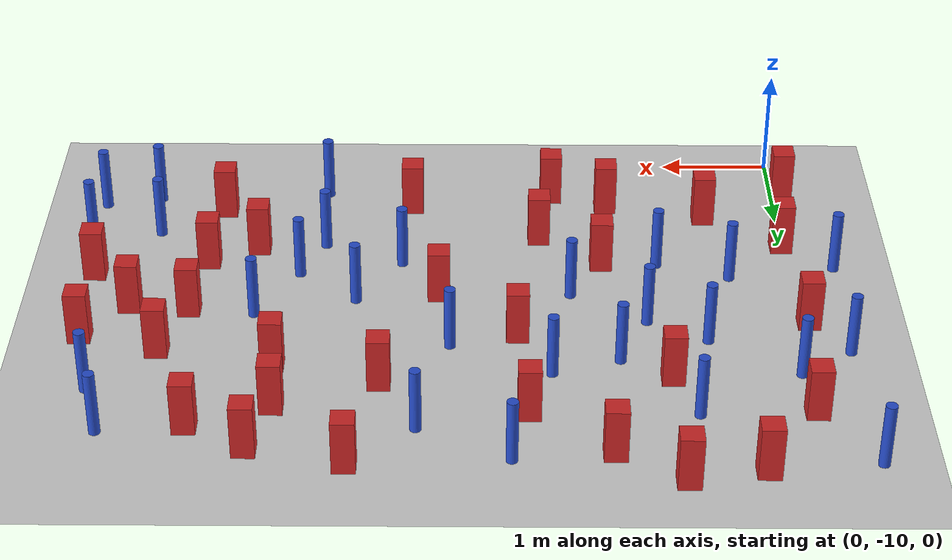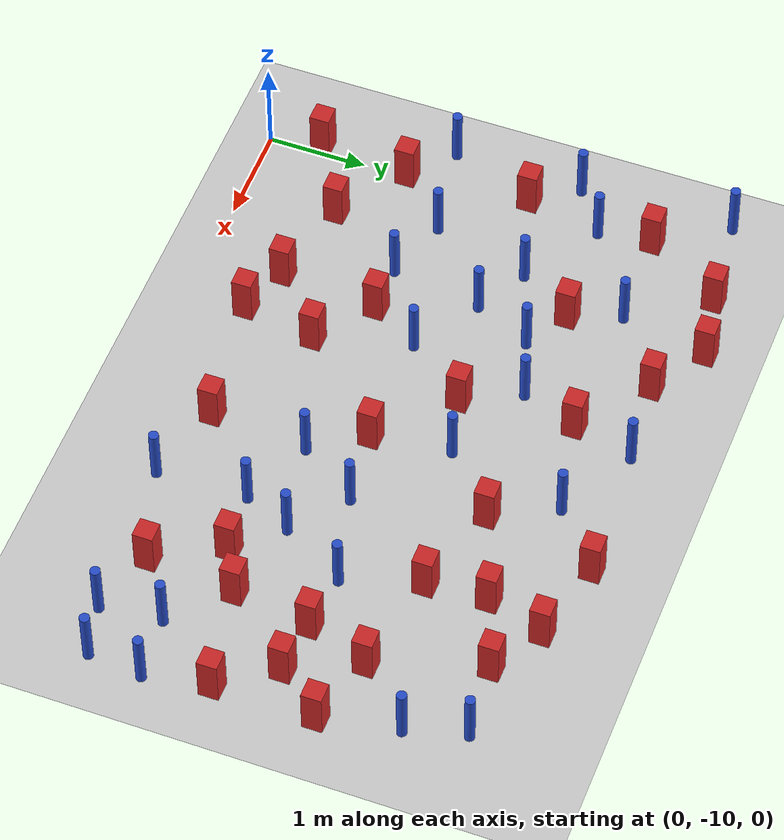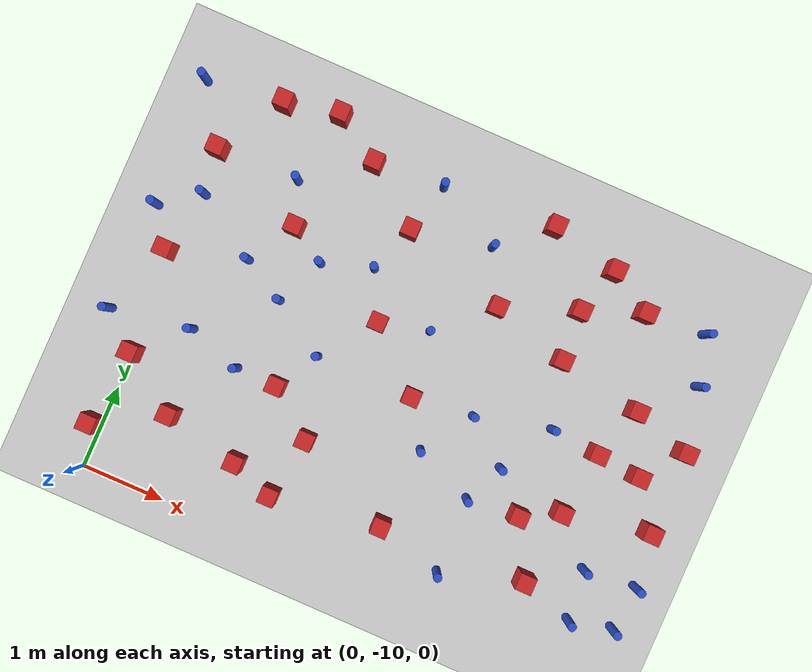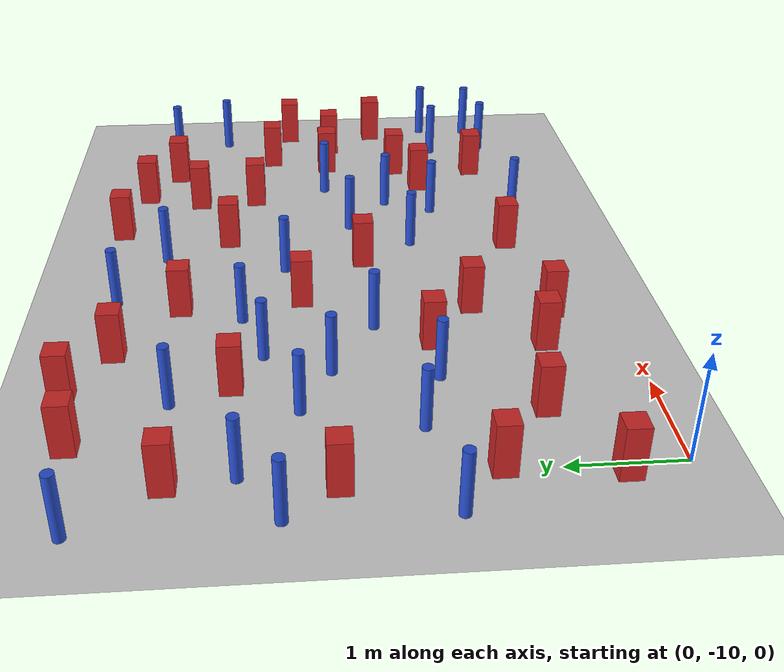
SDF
<sdf version="1.6">
 <world name="default">
  <model name="ground_plane">
   <static>1</static>
   <link name="link">
    <collision name="collision">
     <geometry><plane><normal>0 0 1</normal><size>100 100</size></plane></geometry>
     <surface><friction><ode><mu>100</mu><mu2>50</mu2></ode></friction></surface>
    </collision>
    <visual name="visual">
     <cast_shadows>0</cast_shadows>
     <geometry><plane><normal>0 0 1</normal><size>100 100</size></plane></geometry>
     <material>
      <ambient>1.0 1.0 1.0 1.0</ambient>
      <diffuse>0.8 0.8 0.8 1.0</diffuse>
      <specular>0.01 0.01 0.01 1.000000</specular>
     </material>
    </visual>
   </link>
  </model>
  <model name="pole_obstacle18">
   <static>true</static>
   <pose>1.58552045146 -6.7263873813 -2.66029137441e-07 -5.69430205635e-07 6.84129966557e-07 -8.68349370822e-08</pose>
   <link name="link">
    <pose>0 0 0.3 0 -0 0</pose>
    <inertial>
     <mass>1</mass>
     <inertia><ixx>0.145833</ixx><ixy>0</ixy><ixz>0</ixz><iyy>0.145833</iyy><iyz>0</iyz><izz>0.125</izz></inertia>
    </inertial>
    <collision name="collision">
     <geometry><cylinder><radius>0.05</radius><length>.6</length></cylinder></geometry>
    </collision>
    <visual name="visual">
     <geometry><cylinder><radius>0.05</radius><length>.6</length></cylinder></geometry>
     <material>
      <script><name>Gazebo/Blue</name><uri>file://media/materials/scripts/gazebo.material</uri></script>
     </material>
    </visual>
   </link>
  </model>
  <model name="pole_obstacle31">
   <static>true</static>
   <pose>3.91801562822 -7.6366613993 -2.66029137441e-07 -5.69430205635e-07 6.84129966557e-07 -8.68349370832e-08</pose>
   <link name="link">
    <pose>0 0 0.3 0 -0 0</pose>
    <inertial>
     <mass>1</mass>
     <inertia><ixx>0.145833</ixx><ixy>0</ixy><ixz>0</ixz><iyy>0.145833</iyy><iyz>0</iyz><izz>0.125</izz></inertia>
    </inertial>
    <collision name="collision">
     <geometry><cylinder><radius>0.05</radius><length>.6</length></cylinder></geometry>
    </collision>
    <visual name="visual">
     <geometry><cylinder><radius>0.05</radius><length>.6</length></cylinder></geometry>
     <material>
      <script><name>Gazebo/Blue</name><uri>file://media/materials/scripts/gazebo.material</uri></script>
     </material>
    </visual>
   </link>
  </model>
  <model name="pole_obstacle36">
   <static>true</static>
   <pose>3.33790731916 -5.7498478775 -2.66029137441e-07 -5.69430205635e-07 6.84129966557e-07 -8.68349370832e-08</pose>
   <link name="link">
    <pose>0 0 0.3 0 -0 0</pose>
    <inertial>
     <mass>1</mass>
     <inertia><ixx>0.145833</ixx><ixy>0</ixy><ixz>0</ixz><iyy>0.145833</iyy><iyz>0</iyz><izz>0.125</izz></inertia>
    </inertial>
    <collision name="collision">
     <geometry><cylinder><radius>0.05</radius><length>.6</length></cylinder></geometry>
    </collision>
    <visual name="visual">
     <geometry><cylinder><radius>0.05</radius><length>.6</length></cylinder></geometry>
     <material>
      <script><name>Gazebo/Blue</name><uri>file://media/materials/scripts/gazebo.material</uri></script>
     </material>
    </visual>
   </link>
  </model>
  <model name="pole_obstacle39">
   <static>true</static>
   <pose>3.51666617327 -8.24035117263 -2.66029137497e-07 -5.69430205676e-07 6.84129966501e-07 -8.6834937112e-08</pose>
   <link name="link">
    <pose>0 0 0.3 0 -0 0</pose>
    <inertial>
     <mass>1</mass>
     <inertia><ixx>0.145833</ixx><ixy>0</ixy><ixz>0</ixz><iyy>0.145833</iyy><iyz>0</iyz><izz>0.125</izz></inertia>
    </inertial>
    <collision name="collision">
     <geometry><cylinder><radius>0.05</radius><length>.6</length></cylinder></geometry>
    </collision>
    <visual name="visual">
     <geometry><cylinder><radius>0.05</radius><length>.6</length></cylinder></geometry>
     <material>
      <script><name>Gazebo/Blue</name><uri>file://media/materials/scripts/gazebo.material</uri></script>
     </material>
    </visual>
   </link>
  </model>
  <model name="pole_obstacle42">
   <static>true</static>
   <pose>4.4470622905 -8.05991147245 -2.66029137441e-07 -5.69430205631e-07 6.84129966561e-07 -8.68349370782e-08</pose>
   <link name="link">
    <pose>0 0 0.3 0 -0 0</pose>
    <inertial>
     <mass>1</mass>
     <inertia><ixx>0.145833</ixx><ixy>0</ixy><ixz>0</ixz><iyy>0.145833</iyy><iyz>0</iyz><izz>0.125</izz></inertia>
    </inertial>
    <collision name="collision">
     <geometry><cylinder><radius>0.05</radius><length>.6</length></cylinder></geometry>
    </collision>
    <visual name="visual">
     <geometry><cylinder><radius>0.05</radius><length>.6</length></cylinder></geometry>
     <material>
      <script><name>Gazebo/Blue</name><uri>file://media/materials/scripts/gazebo.material</uri></script>
     </material>
    </visual>
   </link>
  </model>
  <model name="square_post_obstacle31">
   <static>true</static>
   <pose>2.47371363695 -7.0871340641 -7.80171244635e-07 7.17449752808e-06 -5.6639232126e-07 2.2715510512e-05</pose>
   <link name="link">
    <pose>0 0 0.25 0 -0 0</pose>
    <inertial>
     <mass>100</mass>
     <inertia>
      <ixx>0.166667</ixx>
      <ixy>0</ixy>
      <ixz>0</ixz>
      <iyy>0.166667</iyy>
      <iyz>0</iyz>
      <izz>0.166667</izz>
     </inertia>
    </inertial>
    <collision name="collision"><geometry><box><size>.2 .2 .5</size></box></geometry></collision>
    <visual name="visual">
     <geometry><box><size>.2 .2 .5</size></box></geometry>
     <material>
      <script><name>Gazebo/Red</name><uri>file://media/materials/scripts/gazebo.material</uri></script>
     </material>
    </visual>
   </link>
  </model>
  <model name="square_post_obstacle33">
   <static>true</static>
   <pose>1.61328916815 -9.22471062786 -7.80171244635e-07 7.17449752808e-06 -5.6639232126e-07 2.2715510512e-05</pose>
   <link name="link">
    <pose>0 0 0.25 0 -0 0</pose>
    <inertial>
     <mass>100</mass>
     <inertia>
      <ixx>0.166667</ixx>
      <ixy>0</ixy>
      <ixz>0</ixz>
      <iyy>0.166667</iyy>
      <iyz>0</iyz>
      <izz>0.166667</izz>
     </inertia>
    </inertial>
    <collision name="collision"><geometry><box><size>.2 .2 .5</size></box></geometry></collision>
    <visual name="visual">
     <geometry><box><size>.2 .2 .5</size></box></geometry>
     <material>
      <script><name>Gazebo/Red</name><uri>file://media/materials/scripts/gazebo.material</uri></script>
     </material>
    </visual>
   </link>
  </model>
  <model name="square_post_obstacle35">
   <static>true</static>
   <pose>6.31625401358 -7.04260645108 -7.80171244635e-07 7.17449752808e-06 -5.6639232126e-07 2.2715510512e-05</pose>
   <link name="link">
    <pose>0 0 0.25 0 -0 0</pose>
    <inertial>
     <mass>100</mass>
     <inertia>
      <ixx>0.166667</ixx>
      <ixy>0</ixy>
      <ixz>0</ixz>
      <iyy>0.166667</iyy>
      <iyz>0</iyz>
      <izz>0.166667</izz>
     </inertia>
    </inertial>
    <collision name="collision"><geometry><box><size>.2 .2 .5</size></box></geometry></collision>
    <visual name="visual">
     <geometry><box><size>.2 .2 .5</size></box></geometry>
     <material>
      <script><name>Gazebo/Red</name><uri>file://media/materials/scripts/gazebo.material</uri></script>
     </material>
    </visual>
   </link>
  </model>
  <model name="square_post_obstacle36">
   <static>true</static>
   <pose>2.12805671303 -9.40827159047 -7.80171244635e-07 7.17449752808e-06 -5.6639232126e-07 2.2715510512e-05</pose>
   <link name="link">
    <pose>0 0 0.25 0 -0 0</pose>
    <inertial>
     <mass>100</mass>
     <inertia>
      <ixx>0.166667</ixx>
      <ixy>0</ixy>
      <ixz>0</ixz>
      <iyy>0.166667</iyy>
      <iyz>0</iyz>
      <izz>0.166667</izz>
     </inertia>
    </inertial>
    <collision name="collision"><geometry><box><size>.2 .2 .5</size></box></geometry></collision>
    <visual name="visual">
     <geometry><box><size>.2 .2 .5</size></box></geometry>
     <material>
      <script><name>Gazebo/Red</name><uri>file://media/materials/scripts/gazebo.material</uri></script>
     </material>
    </visual>
   </link>
  </model>
  <model name="pole_obstacle54">
   <static>true</static>
   <pose>4.23370922379 -8.5427804016 -2.66029137441e-07 -5.69430205631e-07 6.84129966561e-07 -8.68349370782e-08</pose>
   <link name="link">
    <pose>0 0 0.3 0 -0 0</pose>
    <inertial>
     <mass>1</mass>
     <inertia><ixx>0.145833</ixx><ixy>0</ixy><ixz>0</ixz><iyy>0.145833</iyy><iyz>0</iyz><izz>0.125</izz></inertia>
    </inertial>
    <collision name="collision">
     <geometry><cylinder><radius>0.05</radius><length>.6</length></cylinder></geometry>
    </collision>
    <visual name="visual">
     <geometry><cylinder><radius>0.05</radius><length>.6</length></cylinder></geometry>
     <material>
      <script><name>Gazebo/Blue</name><uri>file://media/materials/scripts/gazebo.material</uri></script>
     </material>
    </visual>
   </link>
  </model>
  <model name="pole_obstacle58">
   <static>true</static>
   <pose>2.54263662035 -5.33857939532 -2.66029137441e-07 -5.69430205635e-07 6.84129966557e-07 -8.68349370832e-08</pose>
   <link name="link">
    <pose>0 0 0.3 0 -0 0</pose>
    <inertial>
     <mass>1</mass>
     <inertia><ixx>0.145833</ixx><ixy>0</ixy><ixz>0</ixz><iyy>0.145833</iyy><iyz>0</iyz><izz>0.125</izz></inertia>
    </inertial>
    <collision name="collision">
     <geometry><cylinder><radius>0.05</radius><length>.6</length></cylinder></geometry>
    </collision>
    <visual name="visual">
     <geometry><cylinder><radius>0.05</radius><length>.6</length></cylinder></geometry>
     <material>
      <script><name>Gazebo/Blue</name><uri>file://media/materials/scripts/gazebo.material</uri></script>
     </material>
    </visual>
   </link>
  </model>
  <model name="square_post_obstacle44">
   <static>true</static>
   <pose>5.29180735033 -8.24119543071 -7.80171244635e-07 7.17449752808e-06 -5.6639232126e-07 2.2715510512e-05</pose>
   <link name="link">
    <pose>0 0 0.25 0 -0 0</pose>
    <inertial>
     <mass>100</mass>
     <inertia>
      <ixx>0.166667</ixx>
      <ixy>0</ixy>
      <ixz>0</ixz>
      <iyy>0.166667</iyy>
      <iyz>0</iyz>
      <izz>0.166667</izz>
     </inertia>
    </inertial>
    <collision name="collision"><geometry><box><size>.2 .2 .5</size></box></geometry></collision>
    <visual name="visual">
     <geometry><box><size>.2 .2 .5</size></box></geometry>
     <material>
      <script><name>Gazebo/Red</name><uri>file://media/materials/scripts/gazebo.material</uri></script>
     </material>
    </visual>
   </link>
  </model>
  <model name="pole_obstacle79">
   <static>true</static>
   <pose>5.9930749896 -5.68883327649 -2.66029137441e-07 -5.69430205655e-07 6.84129966534e-07 -8.68349370984e-08</pose>
   <link name="link">
    <pose>0 0 0.3 0 -0 0</pose>
    <inertial>
     <mass>1</mass>
     <inertia><ixx>0.145833</ixx><ixy>0</ixy><ixz>0</ixz><iyy>0.145833</iyy><iyz>0</iyz><izz>0.125</izz></inertia>
    </inertial>
    <collision name="collision">
     <geometry><cylinder><radius>0.05</radius><length>.6</length></cylinder></geometry>
    </collision>
    <visual name="visual">
     <geometry><cylinder><radius>0.05</radius><length>.6</length></cylinder></geometry>
     <material>
      <script><name>Gazebo/Blue</name><uri>file://media/materials/scripts/gazebo.material</uri></script>
     </material>
    </visual>
   </link>
  </model>
  <model name="square_post_obstacle67">
   <static>true</static>
   <pose>-0.10752817898 -7.296969438 -7.80171244635e-07 7.17449752808e-06 -5.6639232126e-07 2.2715510512e-05</pose>
   <link name="link">
    <pose>0 0 0.25 0 -0 0</pose>
    <inertial>
     <mass>100</mass>
     <inertia>
      <ixx>0.166667</ixx>
      <ixy>0</ixy>
      <ixz>0</ixz>
      <iyy>0.166667</iyy>
      <iyz>0</iyz>
      <izz>0.166667</izz>
     </inertia>
    </inertial>
    <collision name="collision"><geometry><box><size>.2 .2 .5</size></box></geometry></collision>
    <visual name="visual">
     <geometry><box><size>.2 .2 .5</size></box></geometry>
     <material>
      <script><name>Gazebo/Red</name><uri>file://media/materials/scripts/gazebo.material</uri></script>
     </material>
    </visual>
   </link>
  </model>
  <model name="square_post_obstacle70">
   <static>true</static>
   <pose>4.5941539279 -6.63401216448 -7.80171244635e-07 7.17449752808e-06 -5.6639232126e-07 2.2715510512e-05</pose>
   <link name="link">
    <pose>0 0 0.25 0 -0 0</pose>
    <inertial>
     <mass>100</mass>
     <inertia>
      <ixx>0.166667</ixx>
      <ixy>0</ixy>
      <ixz>0</ixz>
      <iyy>0.166667</iyy>
      <iyz>0</iyz>
      <izz>0.166667</izz>
     </inertia>
    </inertial>
    <collision name="collision"><geometry><box><size>.2 .2 .5</size></box></geometry></collision>
    <visual name="visual">
     <geometry><box><size>.2 .2 .5</size></box></geometry>
     <material>
      <script><name>Gazebo/Red</name><uri>file://media/materials/scripts/gazebo.material</uri></script>
     </material>
    </visual>
   </link>
  </model>
  <model name="square_post_obstacle74">
   <static>true</static>
   <pose>5.21480375224 -9.13327662087 -7.80171244635e-07 7.17449752808e-06 -5.6639232126e-07 2.2715510512e-05</pose>
   <link name="link">
    <pose>0 0 0.25 0 -0 0</pose>
    <inertial>
     <mass>100</mass>
     <inertia>
      <ixx>0.166667</ixx>
      <ixy>0</ixy>
      <ixz>0</ixz>
      <iyy>0.166667</iyy>
      <iyz>0</iyz>
      <izz>0.166667</izz>
     </inertia>
    </inertial>
    <collision name="collision"><geometry><box><size>.2 .2 .5</size></box></geometry></collision>
    <visual name="visual">
     <geometry><box><size>.2 .2 .5</size></box></geometry>
     <material>
      <script><name>Gazebo/Red</name><uri>file://media/materials/scripts/gazebo.material</uri></script>
     </material>
    </visual>
   </link>
  </model>
  <model name="square_post_obstacle75">
   <static>true</static>
   <pose>1.69570128147 -8.22731227554 -7.80171244635e-07 7.17449752808e-06 -5.6639232126e-07 2.2715510512e-05</pose>
   <link name="link">
    <pose>0 0 0.25 0 -0 0</pose>
    <inertial>
     <mass>100</mass>
     <inertia>
      <ixx>0.166667</ixx>
      <ixy>0</ixy>
      <ixz>0</ixz>
      <iyy>0.166667</iyy>
      <iyz>0</iyz>
      <izz>0.166667</izz>
     </inertia>
    </inertial>
    <collision name="collision"><geometry><box><size>.2 .2 .5</size></box></geometry></collision>
    <visual name="visual">
     <geometry><box><size>.2 .2 .5</size></box></geometry>
     <material>
      <script><name>Gazebo/Red</name><uri>file://media/materials/scripts/gazebo.material</uri></script>
     </material>
    </visual>
   </link>
  </model>
  <model name="square_post_obstacle79">
   <static>true</static>
   <pose>5.25475555915 -5.74905483885 -7.80171244635e-07 7.17449752808e-06 -5.6639232126e-07 2.2715510512e-05</pose>
   <link name="link">
    <pose>0 0 0.25 0 -0 0</pose>
    <inertial>
     <mass>100</mass>
     <inertia>
      <ixx>0.166667</ixx>
      <ixy>0</ixy>
      <ixz>0</ixz>
      <iyy>0.166667</iyy>
      <iyz>0</iyz>
      <izz>0.166667</izz>
     </inertia>
    </inertial>
    <collision name="collision"><geometry><box><size>.2 .2 .5</size></box></geometry></collision>
    <visual name="visual">
     <geometry><box><size>.2 .2 .5</size></box></geometry>
     <material>
      <script><name>Gazebo/Red</name><uri>file://media/materials/scripts/gazebo.material</uri></script>
     </material>
    </visual>
   </link>
  </model>
  <model name="pole_obstacle91">
   <static>true</static>
   <pose>1.18551552994 -8.22961329739 -2.66029137441e-07 -5.69430205648e-07 6.84129966543e-07 -8.68349370925e-08</pose>
   <link name="link">
    <pose>0 0 0.3 0 -0 0</pose>
    <inertial>
     <mass>1</mass>
     <inertia><ixx>0.145833</ixx><ixy>0</ixy><ixz>0</ixz><iyy>0.145833</iyy><iyz>0</iyz><izz>0.125</izz></inertia>
    </inertial>
    <collision name="collision">
     <geometry><cylinder><radius>0.05</radius><length>.6</length></cylinder></geometry>
    </collision>
    <visual name="visual">
     <geometry><cylinder><radius>0.05</radius><length>.6</length></cylinder></geometry>
     <material>
      <script><name>Gazebo/Blue</name><uri>file://media/materials/scripts/gazebo.material</uri></script>
     </material>
    </visual>
   </link>
  </model>
  <model name="pole_obstacle94">
   <static>true</static>
   <pose>3.06592417629 -6.93754343749 -2.66029137441e-07 -5.69430205635e-07 6.84129966557e-07 -8.68349370832e-08</pose>
   <link name="link">
    <pose>0 0 0.3 0 -0 0</pose>
    <inertial>
     <mass>1</mass>
     <inertia><ixx>0.145833</ixx><ixy>0</ixy><ixz>0</ixz><iyy>0.145833</iyy><iyz>0</iyz><izz>0.125</izz></inertia>
    </inertial>
    <collision name="collision">
     <geometry><cylinder><radius>0.05</radius><length>.6</length></cylinder></geometry>
    </collision>
    <visual name="visual">
     <geometry><cylinder><radius>0.05</radius><length>.6</length></cylinder></geometry>
     <material>
      <script><name>Gazebo/Blue</name><uri>file://media/materials/scripts/gazebo.material</uri></script>
     </material>
    </visual>
   </link>
  </model>
  <model name="square_post_obstacle90">
   <static>true</static>
   <pose>0.469718161379 -5.19698137882 -7.80171244635e-07 7.17449752808e-06 -5.6639232126e-07 2.2715510512e-05</pose>
   <link name="link">
    <pose>0 0 0.25 0 -0 0</pose>
    <inertial>
     <mass>100</mass>
     <inertia>
      <ixx>0.166667</ixx>
      <ixy>0</ixy>
      <ixz>0</ixz>
      <iyy>0.166667</iyy>
      <iyz>0</iyz>
      <izz>0.166667</izz>
     </inertia>
    </inertial>
    <collision name="collision"><geometry><box><size>.2 .2 .5</size></box></geometry></collision>
    <visual name="visual">
     <geometry><box><size>.2 .2 .5</size></box></geometry>
     <material>
      <script><name>Gazebo/Red</name><uri>file://media/materials/scripts/gazebo.material</uri></script>
     </material>
    </visual>
   </link>
  </model>
  <model name="square_post_obstacle92">
   <static>true</static>
   <pose>2.38933063146 -5.95541316662 -7.80171244635e-07 7.17449752808e-06 -5.6639232126e-07 2.2715510512e-05</pose>
   <link name="link">
    <pose>0 0 0.25 0 -0 0</pose>
    <inertial>
     <mass>100</mass>
     <inertia>
      <ixx>0.166667</ixx>
      <ixy>0</ixy>
      <ixz>0</ixz>
      <iyy>0.166667</iyy>
      <iyz>0</iyz>
      <izz>0.166667</izz>
     </inertia>
    </inertial>
    <collision name="collision"><geometry><box><size>.2 .2 .5</size></box></geometry></collision>
    <visual name="visual">
     <geometry><box><size>.2 .2 .5</size></box></geometry>
     <material>
      <script><name>Gazebo/Red</name><uri>file://media/materials/scripts/gazebo.material</uri></script>
     </material>
    </visual>
   </link>
  </model>
  <model name="square_post_obstacle94">
   <static>true</static>
   <pose>3.66564878433 -6.37017328752 -7.80171244635e-07 7.17449752808e-06 -5.6639232126e-07 2.2715510512e-05</pose>
   <link name="link">
    <pose>0 0 0.25 0 -0 0</pose>
    <inertial>
     <mass>100</mass>
     <inertia>
      <ixx>0.166667</ixx>
      <ixy>0</ixy>
      <ixz>0</ixz>
      <iyy>0.166667</iyy>
      <iyz>0</iyz>
      <izz>0.166667</izz>
     </inertia>
    </inertial>
    <collision name="collision"><geometry><box><size>.2 .2 .5</size></box></geometry></collision>
    <visual name="visual">
     <geometry><box><size>.2 .2 .5</size></box></geometry>
     <material>
      <script><name>Gazebo/Red</name><uri>file://media/materials/scripts/gazebo.material</uri></script>
     </material>
    </visual>
   </link>
  </model>
  <model name="pole_obstacle106">
   <static>true</static>
   <pose>0.532127398166 -8.02023771664 -2.6602913733e-07 -5.69430205608e-07 6.84129966601e-07 -8.68349370628e-08</pose>
   <link name="link">
    <pose>0 0 0.3 0 -0 0</pose>
    <inertial>
     <mass>1</mass>
     <inertia><ixx>0.145833</ixx><ixy>0</ixy><ixz>0</ixz><iyy>0.145833</iyy><iyz>0</iyz><izz>0.125</izz></inertia>
    </inertial>
    <collision name="collision">
     <geometry><cylinder><radius>0.05</radius><length>.6</length></cylinder></geometry>
    </collision>
    <visual name="visual">
     <geometry><cylinder><radius>0.05</radius><length>.6</length></cylinder></geometry>
     <material>
      <script><name>Gazebo/Blue</name><uri>file://media/materials/scripts/gazebo.material</uri></script>
     </material>
    </visual>
   </link>
  </model>
  <model name="pole_obstacle110">
   <static>true</static>
   <pose>0.959236012127 -5.95256939404 -2.66029137441e-07 -5.69430205626e-07 6.84129966567e-07 -8.68349370747e-08</pose>
   <link name="link">
    <pose>0 0 0.3 0 -0 0</pose>
    <inertial>
     <mass>1</mass>
     <inertia><ixx>0.145833</ixx><ixy>0</ixy><ixz>0</ixz><iyy>0.145833</iyy><iyz>0</iyz><izz>0.125</izz></inertia>
    </inertial>
    <collision name="collision">
     <geometry><cylinder><radius>0.05</radius><length>.6</length></cylinder></geometry>
    </collision>
    <visual name="visual">
     <geometry><cylinder><radius>0.05</radius><length>.6</length></cylinder></geometry>
     <material>
      <script><name>Gazebo/Blue</name><uri>file://media/materials/scripts/gazebo.material</uri></script>
     </material>
    </visual>
   </link>
  </model>
  <model name="square_post_obstacle111">
   <static>true</static>
   <pose>0.695554939308 -9.02760915661 -7.80171244635e-07 7.17449752808e-06 -5.6639232126e-07 2.2715510512e-05</pose>
   <link name="link">
    <pose>0 0 0.25 0 -0 0</pose>
    <inertial>
     <mass>100</mass>
     <inertia>
      <ixx>0.166667</ixx>
      <ixy>0</ixy>
      <ixz>0</ixz>
      <iyy>0.166667</iyy>
      <iyz>0</iyz>
      <izz>0.166667</izz>
     </inertia>
    </inertial>
    <collision name="collision"><geometry><box><size>.2 .2 .5</size></box></geometry></collision>
    <visual name="visual">
     <geometry><box><size>.2 .2 .5</size></box></geometry>
     <material>
      <script><name>Gazebo/Red</name><uri>file://media/materials/scripts/gazebo.material</uri></script>
     </material>
    </visual>
   </link>
  </model>
  <model name="square_post_obstacle113">
   <static>true</static>
   <pose>4.84929059667 -8.47656012498 -7.80171244635e-07 7.17449752808e-06 -5.6639232126e-07 2.2715510512e-05</pose>
   <link name="link">
    <pose>0 0 0.25 0 -0 0</pose>
    <inertial>
     <mass>100</mass>
     <inertia>
      <ixx>0.166667</ixx>
      <ixy>0</ixy>
      <ixz>0</ixz>
      <iyy>0.166667</iyy>
      <iyz>0</iyz>
      <izz>0.166667</izz>
     </inertia>
    </inertial>
    <collision name="collision"><geometry><box><size>.2 .2 .5</size></box></geometry></collision>
    <visual name="visual">
     <geometry><box><size>.2 .2 .5</size></box></geometry>
     <material>
      <script><name>Gazebo/Red</name><uri>file://media/materials/scripts/gazebo.material</uri></script>
     </material>
    </visual>
   </link>
  </model>
  <model name="pole_obstacle118">
   <static>true</static>
   <pose>-0.477568602852 -5.31043831715 -2.66029137441e-07 -5.69430205633e-07 6.84129966559e-07 -8.68349370792e-08</pose>
   <link name="link">
    <pose>0 0 0.3 0 -0 0</pose>
    <inertial>
     <mass>1</mass>
     <inertia><ixx>0.145833</ixx><ixy>0</ixy><ixz>0</ixz><iyy>0.145833</iyy><iyz>0</iyz><izz>0.125</izz></inertia>
    </inertial>
    <collision name="collision">
     <geometry><cylinder><radius>0.05</radius><length>.6</length></cylinder></geometry>
    </collision>
    <visual name="visual">
     <geometry><cylinder><radius>0.05</radius><length>.6</length></cylinder></geometry>
     <material>
      <script><name>Gazebo/Blue</name><uri>file://media/materials/scripts/gazebo.material</uri></script>
     </material>
    </visual>
   </link>
  </model>
  <model name="pole_obstacle119">
   <static>true</static>
   <pose>1.32250731096 -7.31094668176 -2.66029137441e-07 -5.69430205635e-07 6.84129966557e-07 -8.68349370822e-08</pose>
   <link name="link">
    <pose>0 0 0.3 0 -0 0</pose>
    <inertial>
     <mass>1</mass>
     <inertia><ixx>0.145833</ixx><ixy>0</ixy><ixz>0</ixz><iyy>0.145833</iyy><iyz>0</iyz><izz>0.125</izz></inertia>
    </inertial>
    <collision name="collision">
     <geometry><cylinder><radius>0.05</radius><length>.6</length></cylinder></geometry>
    </collision>
    <visual name="visual">
     <geometry><cylinder><radius>0.05</radius><length>.6</length></cylinder></geometry>
     <material>
      <script><name>Gazebo/Blue</name><uri>file://media/materials/scripts/gazebo.material</uri></script>
     </material>
    </visual>
   </link>
  </model>
  <model name="square_post_obstacle122">
   <static>true</static>
   <pose>4.55565841946 -6.02664580069 -7.80171244635e-07 7.17449752808e-06 -5.6639232126e-07 2.2715510512e-05</pose>
   <link name="link">
    <pose>0 0 0.25 0 -0 0</pose>
    <inertial>
     <mass>100</mass>
     <inertia>
      <ixx>0.166667</ixx>
      <ixy>0</ixy>
      <ixz>0</ixz>
      <iyy>0.166667</iyy>
      <iyz>0</iyz>
      <izz>0.166667</izz>
     </inertia>
    </inertial>
    <collision name="collision"><geometry><box><size>.2 .2 .5</size></box></geometry></collision>
    <visual name="visual">
     <geometry><box><size>.2 .2 .5</size></box></geometry>
     <material>
      <script><name>Gazebo/Red</name><uri>file://media/materials/scripts/gazebo.material</uri></script>
     </material>
    </visual>
   </link>
  </model>
  <model name="pole_obstacle128">
   <static>true</static>
   <pose>-0.440493058447 -8.18028347617 -2.66029137441e-07 -5.6943020566e-07 6.84129966529e-07 -8.68349371036e-08</pose>
   <link name="link">
    <pose>0 0 0.3 0 -0 0</pose>
    <inertial>
     <mass>1</mass>
     <inertia><ixx>0.145833</ixx><ixy>0</ixy><ixz>0</ixz><iyy>0.145833</iyy><iyz>0</iyz><izz>0.125</izz></inertia>
    </inertial>
    <collision name="collision">
     <geometry><cylinder><radius>0.05</radius><length>.6</length></cylinder></geometry>
    </collision>
    <visual name="visual">
     <geometry><cylinder><radius>0.05</radius><length>.6</length></cylinder></geometry>
     <material>
      <script><name>Gazebo/Blue</name><uri>file://media/materials/scripts/gazebo.material</uri></script>
     </material>
    </visual>
   </link>
  </model>
  <model name="square_post_obstacle128">
   <static>true</static>
   <pose>6.32036876031 -8.04457256508 -7.80171244635e-07 7.17449752808e-06 -5.6639232126e-07 2.2715510512e-05</pose>
   <link name="link">
    <pose>0 0 0.25 0 -0 0</pose>
    <inertial>
     <mass>100</mass>
     <inertia>
      <ixx>0.166667</ixx>
      <ixy>0</ixy>
      <ixz>0</ixz>
      <iyy>0.166667</iyy>
      <iyz>0</iyz>
      <izz>0.166667</izz>
     </inertia>
    </inertial>
    <collision name="collision"><geometry><box><size>.2 .2 .5</size></box></geometry></collision>
    <visual name="visual">
     <geometry><box><size>.2 .2 .5</size></box></geometry>
     <material>
      <script><name>Gazebo/Red</name><uri>file://media/materials/scripts/gazebo.material</uri></script>
     </material>
    </visual>
   </link>
  </model>
  <model name="square_post_obstacle129">
   <static>true</static>
   <pose>5.93488441717 -7.51142414606 -7.80171244635e-07 7.17449752808e-06 -5.6639232126e-07 2.2715510512e-05</pose>
   <link name="link">
    <pose>0 0 0.25 0 -0 0</pose>
    <inertial>
     <mass>100</mass>
     <inertia>
      <ixx>0.166667</ixx>
      <ixy>0</ixy>
      <ixz>0</ixz>
      <iyy>0.166667</iyy>
      <iyz>0</iyz>
      <izz>0.166667</izz>
     </inertia>
    </inertial>
    <collision name="collision"><geometry><box><size>.2 .2 .5</size></box></geometry></collision>
    <visual name="visual">
     <geometry><box><size>.2 .2 .5</size></box></geometry>
     <material>
      <script><name>Gazebo/Red</name><uri>file://media/materials/scripts/gazebo.material</uri></script>
     </material>
    </visual>
   </link>
  </model>
  <model name="pole_obstacle138">
   <static>true</static>
   <pose>5.80016065571 -8.74515535266 -2.66029137441e-07 -5.69430205631e-07 6.84129966561e-07 -8.68349370782e-08</pose>
   <link name="link">
    <pose>0 0 0.3 0 -0 0</pose>
    <inertial>
     <mass>1</mass>
     <inertia><ixx>0.145833</ixx><ixy>0</ixy><ixz>0</ixz><iyy>0.145833</iyy><iyz>0</iyz><izz>0.125</izz></inertia>
    </inertial>
    <collision name="collision">
     <geometry><cylinder><radius>0.05</radius><length>.6</length></cylinder></geometry>
    </collision>
    <visual name="visual">
     <geometry><cylinder><radius>0.05</radius><length>.6</length></cylinder></geometry>
     <material>
      <script><name>Gazebo/Blue</name><uri>file://media/materials/scripts/gazebo.material</uri></script>
     </material>
    </visual>
   </link>
  </model>
  <model name="square_post_obstacle135">
   <static>true</static>
   <pose>1.12454769104 -5.06553405307 -7.80171244635e-07 7.17449752808e-06 -5.6639232126e-07 2.2715510512e-05</pose>
   <link name="link">
    <pose>0 0 0.25 0 -0 0</pose>
    <inertial>
     <mass>100</mass>
     <inertia>
      <ixx>0.166667</ixx>
      <ixy>0</ixy>
      <ixz>0</ixz>
      <iyy>0.166667</iyy>
      <iyz>0</iyz>
      <izz>0.166667</izz>
     </inertia>
    </inertial>
    <collision name="collision"><geometry><box><size>.2 .2 .5</size></box></geometry></collision>
    <visual name="visual">
     <geometry><box><size>.2 .2 .5</size></box></geometry>
     <material>
      <script><name>Gazebo/Red</name><uri>file://media/materials/scripts/gazebo.material</uri></script>
     </material>
    </visual>
   </link>
  </model>
  <model name="pole_obstacle144">
   <static>true</static>
   <pose>-0.42566221578 -6.86198105075 -2.66029137441e-07 -5.69430205632e-07 6.84129966561e-07 -8.68349370786e-08</pose>
   <link name="link">
    <pose>0 0 0.3 0 -0 0</pose>
    <inertial>
     <mass>1</mass>
     <inertia><ixx>0.145833</ixx><ixy>0</ixy><ixz>0</ixz><iyy>0.145833</iyy><iyz>0</iyz><izz>0.125</izz></inertia>
    </inertial>
    <collision name="collision">
     <geometry><cylinder><radius>0.05</radius><length>.6</length></cylinder></geometry>
    </collision>
    <visual name="visual">
     <geometry><cylinder><radius>0.05</radius><length>.6</length></cylinder></geometry>
     <material>
      <script><name>Gazebo/Blue</name><uri>file://media/materials/scripts/gazebo.material</uri></script>
     </material>
    </visual>
   </link>
  </model>
  <model name="square_post_obstacle141">
   <static>true</static>
   <pose>3.90498635935 -5.25353734514 -7.80171244635e-07 7.17449752808e-06 -5.6639232126e-07 2.2715510512e-05</pose>
   <link name="link">
    <pose>0 0 0.25 0 -0 0</pose>
    <inertial>
     <mass>100</mass>
     <inertia>
      <ixx>0.166667</ixx>
      <ixy>0</ixy>
      <ixz>0</ixz>
      <iyy>0.166667</iyy>
      <iyz>0</iyz>
      <izz>0.166667</izz>
     </inertia>
    </inertial>
    <collision name="collision"><geometry><box><size>.2 .2 .5</size></box></geometry></collision>
    <visual name="visual">
     <geometry><box><size>.2 .2 .5</size></box></geometry>
     <material>
      <script><name>Gazebo/Red</name><uri>file://media/materials/scripts/gazebo.material</uri></script>
     </material>
    </visual>
   </link>
  </model>
  <model name="square_post_obstacle142">
   <static>true</static>
   <pose>0.00519374752656 -8.54213517639 -7.80171244635e-07 7.17449752808e-06 -5.6639232126e-07 2.2715510512e-05</pose>
   <link name="link">
    <pose>0 0 0.25 0 -0 0</pose>
    <inertial>
     <mass>100</mass>
     <inertia>
      <ixx>0.166667</ixx>
      <ixy>0</ixy>
      <ixz>0</ixz>
      <iyy>0.166667</iyy>
      <iyz>0</iyz>
      <izz>0.166667</izz>
     </inertia>
    </inertial>
    <collision name="collision"><geometry><box><size>.2 .2 .5</size></box></geometry></collision>
    <visual name="visual">
     <geometry><box><size>.2 .2 .5</size></box></geometry>
     <material>
      <script><name>Gazebo/Red</name><uri>file://media/materials/scripts/gazebo.material</uri></script>
     </material>
    </visual>
   </link>
  </model>
  <model name="square_post_obstacle146">
   <static>true</static>
   <pose>1.15249319619 -6.45875064254 -7.80171244635e-07 7.17449752808e-06 -5.6639232126e-07 2.2715510512e-05</pose>
   <link name="link">
    <pose>0 0 0.25 0 -0 0</pose>
    <inertial>
     <mass>100</mass>
     <inertia>
      <ixx>0.166667</ixx>
      <ixy>0</ixy>
      <ixz>0</ixz>
      <iyy>0.166667</iyy>
      <iyz>0</iyz>
      <izz>0.166667</izz>
     </inertia>
    </inertial>
    <collision name="collision"><geometry><box><size>.2 .2 .5</size></box></geometry></collision>
    <visual name="visual">
     <geometry><box><size>.2 .2 .5</size></box></geometry>
     <material>
      <script><name>Gazebo/Red</name><uri>file://media/materials/scripts/gazebo.material</uri></script>
     </material>
    </visual>
   </link>
  </model>
  <model name="pole_obstacle155">
   <static>true</static>
   <pose>4.25729645565 -9.45714780213 -2.66029137441e-07 -5.69430205631e-07 6.84129966561e-07 -8.68349370782e-08</pose>
   <link name="link">
    <pose>0 0 0.3 0 -0 0</pose>
    <inertial>
     <mass>1</mass>
     <inertia><ixx>0.145833</ixx><ixy>0</ixy><ixz>0</ixz><iyy>0.145833</iyy><iyz>0</iyz><izz>0.125</izz></inertia>
    </inertial>
    <collision name="collision">
     <geometry><cylinder><radius>0.05</radius><length>.6</length></cylinder></geometry>
    </collision>
    <visual name="visual">
     <geometry><cylinder><radius>0.05</radius><length>.6</length></cylinder></geometry>
     <material>
      <script><name>Gazebo/Blue</name><uri>file://media/materials/scripts/gazebo.material</uri></script>
     </material>
    </visual>
   </link>
  </model>
  <model name="pole_obstacle156">
   <static>true</static>
   <pose>1.9889162224 -7.7292019552 -2.66029137441e-07 -5.69430205622e-07 6.84129966572e-07 -8.68349370721e-08</pose>
   <link name="link">
    <pose>0 0 0.3 0 -0 0</pose>
    <inertial>
     <mass>1</mass>
     <inertia><ixx>0.145833</ixx><ixy>0</ixy><ixz>0</ixz><iyy>0.145833</iyy><iyz>0</iyz><izz>0.125</izz></inertia>
    </inertial>
    <collision name="collision">
     <geometry><cylinder><radius>0.05</radius><length>.6</length></cylinder></geometry>
    </collision>
    <visual name="visual">
     <geometry><cylinder><radius>0.05</radius><length>.6</length></cylinder></geometry>
     <material>
      <script><name>Gazebo/Blue</name><uri>file://media/materials/scripts/gazebo.material</uri></script>
     </material>
    </visual>
   </link>
  </model>
  <model name="pole_obstacle157">
   <static>true</static>
   <pose>0.038015355209 -6.53358782782 -2.66029137441e-07 -5.69430205634e-07 6.84129966558e-07 -8.68349370826e-08</pose>
   <link name="link">
    <pose>0 0 0.3 0 -0 0</pose>
    <inertial>
     <mass>1</mass>
     <inertia><ixx>0.145833</ixx><ixy>0</ixy><ixz>0</ixz><iyy>0.145833</iyy><iyz>0</iyz><izz>0.125</izz></inertia>
    </inertial>
    <collision name="collision">
     <geometry><cylinder><radius>0.05</radius><length>.6</length></cylinder></geometry>
    </collision>
    <visual name="visual">
     <geometry><cylinder><radius>0.05</radius><length>.6</length></cylinder></geometry>
     <material>
      <script><name>Gazebo/Blue</name><uri>file://media/materials/scripts/gazebo.material</uri></script>
     </material>
    </visual>
   </link>
  </model>
  <model name="square_post_obstacle155">
   <static>true</static>
   <pose>5.61386378105 -6.82870867524 -7.80171244635e-07 7.17449752808e-06 -5.6639232126e-07 2.2715510512e-05</pose>
   <link name="link">
    <pose>0 0 0.25 0 -0 0</pose>
    <inertial>
     <mass>100</mass>
     <inertia>
      <ixx>0.166667</ixx>
      <ixy>0</ixy>
      <ixz>0</ixz>
      <iyy>0.166667</iyy>
      <iyz>0</iyz>
      <izz>0.166667</izz>
     </inertia>
    </inertial>
    <collision name="collision"><geometry><box><size>.2 .2 .5</size></box></geometry></collision>
    <visual name="visual">
     <geometry><box><size>.2 .2 .5</size></box></geometry>
     <material>
      <script><name>Gazebo/Red</name><uri>file://media/materials/scripts/gazebo.material</uri></script>
     </material>
    </visual>
   </link>
  </model>
  <model name="square_post_obstacle159">
   <static>true</static>
   <pose>1.69587138791 -5.41624676269 -7.80171244635e-07 7.17449752808e-06 -5.6639232126e-07 2.2715510512e-05</pose>
   <link name="link">
    <pose>0 0 0.25 0 -0 0</pose>
    <inertial>
     <mass>100</mass>
     <inertia>
      <ixx>0.166667</ixx>
      <ixy>0</ixy>
      <ixz>0</ixz>
      <iyy>0.166667</iyy>
      <iyz>0</iyz>
      <izz>0.166667</izz>
     </inertia>
    </inertial>
    <collision name="collision"><geometry><box><size>.2 .2 .5</size></box></geometry></collision>
    <visual name="visual">
     <geometry><box><size>.2 .2 .5</size></box></geometry>
     <material>
      <script><name>Gazebo/Red</name><uri>file://media/materials/scripts/gazebo.material</uri></script>
     </material>
    </visual>
   </link>
  </model>
  <model name="pole_obstacle171">
   <static>true</static>
   <pose>0.801299775178 -7.02588361147 -2.66029137441e-07 -5.69430205631e-07 6.84129966561e-07 -8.68349370784e-08</pose>
   <link name="link">
    <pose>0 0 0.3 0 -0 0</pose>
    <inertial>
     <mass>1</mass>
     <inertia><ixx>0.145833</ixx><ixy>0</ixy><ixz>0</ixz><iyy>0.145833</iyy><iyz>0</iyz><izz>0.125</izz></inertia>
    </inertial>
    <collision name="collision">
     <geometry><cylinder><radius>0.05</radius><length>.6</length></cylinder></geometry>
    </collision>
    <visual name="visual">
     <geometry><cylinder><radius>0.05</radius><length>.6</length></cylinder></geometry>
     <material>
      <script><name>Gazebo/Blue</name><uri>file://media/materials/scripts/gazebo.material</uri></script>
     </material>
    </visual>
   </link>
  </model>
  <model name="square_post_obstacle172">
   <static>true</static>
   <pose>3.17325843105 -7.71683813627 -7.80171244635e-07 7.17449752808e-06 -5.6639232126e-07 2.2715510512e-05</pose>
   <link name="link">
    <pose>0 0 0.25 0 -0 0</pose>
    <inertial>
     <mass>100</mass>
     <inertia>
      <ixx>0.166667</ixx>
      <ixy>0</ixy>
      <ixz>0</ixz>
      <iyy>0.166667</iyy>
      <iyz>0</iyz>
      <izz>0.166667</izz>
     </inertia>
    </inertial>
    <collision name="collision"><geometry><box><size>.2 .2 .5</size></box></geometry></collision>
    <visual name="visual">
     <geometry><box><size>.2 .2 .5</size></box></geometry>
     <material>
      <script><name>Gazebo/Red</name><uri>file://media/materials/scripts/gazebo.material</uri></script>
     </material>
    </visual>
   </link>
  </model>
  <model name="pole_obstacle184">
   <static>true</static>
   <pose>6.43364095823 -8.69445938307 -2.66029137441e-07 -5.69430205631e-07 6.84129966561e-07 -8.68349370782e-08</pose>
   <link name="link">
    <pose>0 0 0.3 0 -0 0</pose>
    <inertial>
     <mass>1</mass>
     <inertia><ixx>0.145833</ixx><ixy>0</ixy><ixz>0</ixz><iyy>0.145833</iyy><iyz>0</iyz><izz>0.125</izz></inertia>
    </inertial>
    <collision name="collision">
     <geometry><cylinder><radius>0.05</radius><length>.6</length></cylinder></geometry>
    </collision>
    <visual name="visual">
     <geometry><cylinder><radius>0.05</radius><length>.6</length></cylinder></geometry>
     <material>
      <script><name>Gazebo/Blue</name><uri>file://media/materials/scripts/gazebo.material</uri></script>
     </material>
    </visual>
   </link>
  </model>
  <model name="square_post_obstacle191">
   <static>true</static>
   <pose>3.44468986056 -9.21807840017 -7.80171244635e-07 7.17449752808e-06 -5.6639232126e-07 2.2715510512e-05</pose>
   <link name="link">
    <pose>0 0 0.25 0 -0 0</pose>
    <inertial>
     <mass>100</mass>
     <inertia>
      <ixx>0.166667</ixx>
      <ixy>0</ixy>
      <ixz>0</ixz>
      <iyy>0.166667</iyy>
      <iyz>0</iyz>
      <izz>0.166667</izz>
     </inertia>
    </inertial>
    <collision name="collision"><geometry><box><size>.2 .2 .5</size></box></geometry></collision>
    <visual name="visual">
     <geometry><box><size>.2 .2 .5</size></box></geometry>
     <material>
      <script><name>Gazebo/Red</name><uri>file://media/materials/scripts/gazebo.material</uri></script>
     </material>
    </visual>
   </link>
  </model>
  <model name="square_post_obstacle198">
   <static>true</static>
   <pose>4.73497392853 -5.44535930113 -7.80171244635e-07 7.17449752808e-06 -5.6639232126e-07 2.2715510512e-05</pose>
   <link name="link">
    <pose>0 0 0.25 0 -0 0</pose>
    <inertial>
     <mass>100</mass>
     <inertia>
      <ixx>0.166667</ixx>
      <ixy>0</ixy>
      <ixz>0</ixz>
      <iyy>0.166667</iyy>
      <iyz>0</iyz>
      <izz>0.166667</izz>
     </inertia>
    </inertial>
    <collision name="collision"><geometry><box><size>.2 .2 .5</size></box></geometry></collision>
    <visual name="visual">
     <geometry><box><size>.2 .2 .5</size></box></geometry>
     <material>
      <script><name>Gazebo/Red</name><uri>file://media/materials/scripts/gazebo.material</uri></script>
     </material>
    </visual>
   </link>
  </model>
  <model name="square_post_obstacle205">
   <static>true</static>
   <pose>-0.0960162931487 -9.47645182062 -7.80171244635e-07 7.17449752808e-06 -5.6639232126e-07 2.2715510512e-05</pose>
   <link name="link">
    <pose>0 0 0.25 0 -0 0</pose>
    <inertial>
     <mass>100</mass>
     <inertia>
      <ixx>0.166667</ixx>
      <ixy>0</ixy>
      <ixz>0</ixz>
      <iyy>0.166667</iyy>
      <iyz>0</iyz>
      <izz>0.166667</izz>
     </inertia>
    </inertial>
    <collision name="collision"><geometry><box><size>.2 .2 .5</size></box></geometry></collision>
    <visual name="visual">
     <geometry><box><size>.2 .2 .5</size></box></geometry>
     <material>
      <script><name>Gazebo/Red</name><uri>file://media/materials/scripts/gazebo.material</uri></script>
     </material>
    </visual>
   </link>
  </model>
  <model name="square_post_obstacle207">
   <static>true</static>
   <pose>-0.0203094886369 -5.98857212959 -7.80171244635e-07 7.17449752808e-06 -5.6639232126e-07 2.2715510512e-05</pose>
   <link name="link">
    <pose>0 0 0.25 0 -0 0</pose>
    <inertial>
     <mass>100</mass>
     <inertia>
      <ixx>0.166667</ixx>
      <ixy>0</ixy>
      <ixz>0</ixz>
      <iyy>0.166667</iyy>
      <iyz>0</iyz>
      <izz>0.166667</izz>
     </inertia>
    </inertial>
    <collision name="collision"><geometry><box><size>.2 .2 .5</size></box></geometry></collision>
    <visual name="visual">
     <geometry><box><size>.2 .2 .5</size></box></geometry>
     <material>
      <script><name>Gazebo/Red</name><uri>file://media/materials/scripts/gazebo.material</uri></script>
     </material>
    </visual>
   </link>
  </model>
  <model name="pole_obstacle194">
   <static>true</static>
   <pose>6.376874261 -9.23913185135 -2.66029137441e-07 -5.69430205631e-07 6.84129966561e-07 -8.68349370782e-08</pose>
   <link name="link">
    <pose>0 0 0.3 0 -0 0</pose>
    <inertial>
     <mass>1</mass>
     <inertia><ixx>0.145833</ixx><ixy>0</ixy><ixz>0</ixz><iyy>0.145833</iyy><iyz>0</iyz><izz>0.125</izz></inertia>
    </inertial>
    <collision name="collision">
     <geometry><cylinder><radius>0.05</radius><length>.6</length></cylinder></geometry>
    </collision>
    <visual name="visual">
     <geometry><cylinder><radius>0.05</radius><length>.6</length></cylinder></geometry>
     <material>
      <script><name>Gazebo/Blue</name><uri>file://media/materials/scripts/gazebo.material</uri></script>
     </material>
    </visual>
   </link>
  </model>
  <model name="pole_obstacle200">
   <static>true</static>
   <pose>6.15948553908 -6.27509269216 -2.66029137441e-07 -5.69430205655e-07 6.84129966534e-07 -8.68349370984e-08</pose>
   <link name="link">
    <pose>0 0 0.3 0 -0 0</pose>
    <inertial>
     <mass>1</mass>
     <inertia><ixx>0.145833</ixx><ixy>0</ixy><ixz>0</ixz><iyy>0.145833</iyy><iyz>0</iyz><izz>0.125</izz></inertia>
    </inertial>
    <collision name="collision">
     <geometry><cylinder><radius>0.05</radius><length>.6</length></cylinder></geometry>
    </collision>
    <visual name="visual">
     <geometry><cylinder><radius>0.05</radius><length>.6</length></cylinder></geometry>
     <material>
      <script><name>Gazebo/Blue</name><uri>file://media/materials/scripts/gazebo.material</uri></script>
     </material>
    </visual>
   </link>
  </model>
  <model name="pole_obstacle206">
   <static>true</static>
   <pose>2.18277760172 -6.52924108293 -2.66029137441e-07 -5.69430205635e-07 6.84129966557e-07 -8.68349370832e-08</pose>
   <link name="link">
    <pose>0 0 0.3 0 -0 0</pose>
    <inertial>
     <mass>1</mass>
     <inertia><ixx>0.145833</ixx><ixy>0</ixy><ixz>0</ixz><iyy>0.145833</iyy><iyz>0</iyz><izz>0.125</izz></inertia>
    </inertial>
    <collision name="collision">
     <geometry><cylinder><radius>0.05</radius><length>.6</length></cylinder></geometry>
    </collision>
    <visual name="visual">
     <geometry><cylinder><radius>0.05</radius><length>.6</length></cylinder></geometry>
     <material>
      <script><name>Gazebo/Blue</name><uri>file://media/materials/scripts/gazebo.material</uri></script>
     </material>
    </visual>
   </link>
  </model>
  <model name="square_post_obstacle213">
   <static>true</static>
   <pose>2.25720627118 -8.66191442052 -7.80171244635e-07 7.17449752808e-06 -5.6639232126e-07 2.2715510512e-05</pose>
   <link name="link">
    <pose>0 0 0.25 0 -0 0</pose>
    <inertial>
     <mass>100</mass>
     <inertia>
      <ixx>0.166667</ixx>
      <ixy>0</ixy>
      <ixz>0</ixz>
      <iyy>0.166667</iyy>
      <iyz>0</iyz>
      <izz>0.166667</izz>
     </inertia>
    </inertial>
    <collision name="collision"><geometry><box><size>.2 .2 .5</size></box></geometry></collision>
    <visual name="visual">
     <geometry><box><size>.2 .2 .5</size></box></geometry>
     <material>
      <script><name>Gazebo/Red</name><uri>file://media/materials/scripts/gazebo.material</uri></script>
     </material>
    </visual>
   </link>
  </model>
  <model name="pole_obstacle208">
   <static>true</static>
   <pose>5.86769284568 -9.35363299484 -2.66029137441e-07 -5.69430205631e-07 6.84129966561e-07 -8.68349370782e-08</pose>
   <link name="link">
    <pose>0 0 0.3 0 -0 0</pose>
    <inertial>
     <mass>1</mass>
     <inertia><ixx>0.145833</ixx><ixy>0</ixy><ixz>0</ixz><iyy>0.145833</iyy><iyz>0</iyz><izz>0.125</izz></inertia>
    </inertial>
    <collision name="collision">
     <geometry><cylinder><radius>0.05</radius><length>.6</length></cylinder></geometry>
    </collision>
    <visual name="visual">
     <geometry><cylinder><radius>0.05</radius><length>.6</length></cylinder></geometry>
     <material>
      <script><name>Gazebo/Blue</name><uri>file://media/materials/scripts/gazebo.material</uri></script>
     </material>
    </visual>
   </link>
  </model>
  <model name="pole_obstacle215">
   <static>true</static>
   <pose>4.81836580563 -7.40789611302 -2.66029137441e-07 -5.69430205655e-07 6.84129966534e-07 -8.68349370984e-08</pose>
   <link name="link">
    <pose>0 0 0.3 0 -0 0</pose>
    <inertial>
     <mass>1</mass>
     <inertia><ixx>0.145833</ixx><ixy>0</ixy><ixz>0</ixz><iyy>0.145833</iyy><iyz>0</iyz><izz>0.125</izz></inertia>
    </inertial>
    <collision name="collision">
     <geometry><cylinder><radius>0.05</radius><length>.6</length></cylinder></geometry>
    </collision>
    <visual name="visual">
     <geometry><cylinder><radius>0.05</radius><length>.6</length></cylinder></geometry>
     <material>
      <script><name>Gazebo/Blue</name><uri>file://media/materials/scripts/gazebo.material</uri></script>
     </material>
    </visual>
   </link>
  </model>
  <model name="square_post_obstacle219">
   <static>true</static>
   <pose>5.39898004101 -7.45895002831 -7.80171244635e-07 7.17449752808e-06 -5.6639232126e-07 2.2715510512e-05</pose>
   <link name="link">
    <pose>0 0 0.25 0 -0 0</pose>
    <inertial>
     <mass>100</mass>
     <inertia>
      <ixx>0.166667</ixx>
      <ixy>0</ixy>
      <ixz>0</ixz>
      <iyy>0.166667</iyy>
      <iyz>0</iyz>
      <izz>0.166667</izz>
     </inertia>
    </inertial>
    <collision name="collision"><geometry><box><size>.2 .2 .5</size></box></geometry></collision>
    <visual name="visual">
     <geometry><box><size>.2 .2 .5</size></box></geometry>
     <material>
      <script><name>Gazebo/Red</name><uri>file://media/materials/scripts/gazebo.material</uri></script>
     </material>
    </visual>
   </link>
  </model>
 </world>
</sdf>
